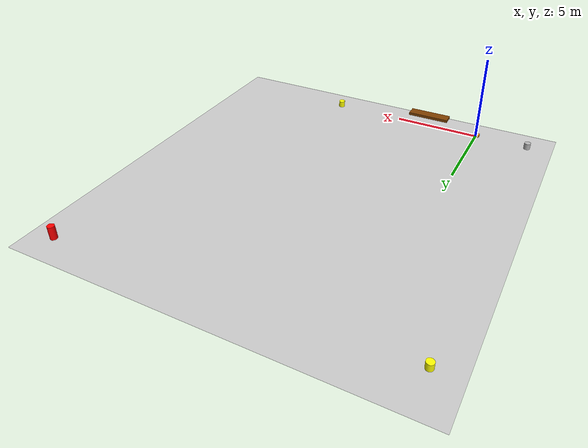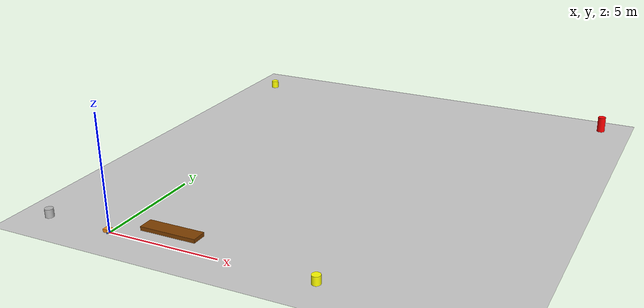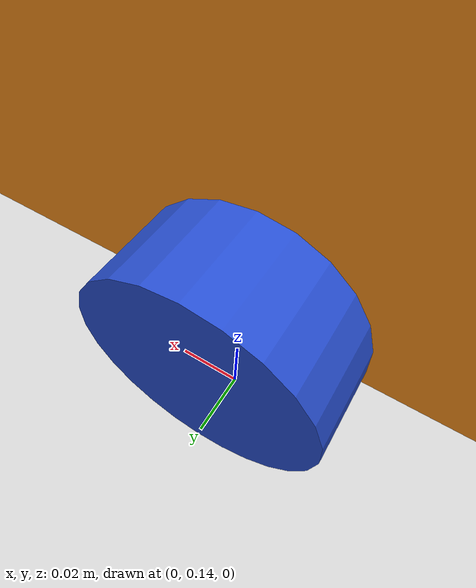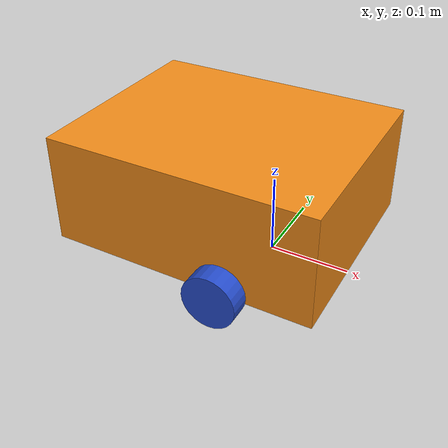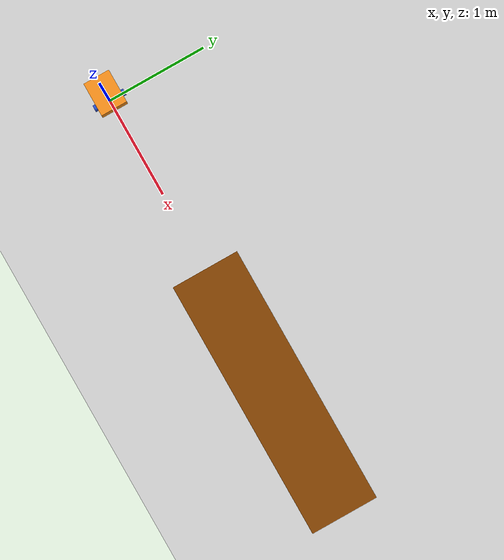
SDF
<sdf version="1.10">
 <world name="simple">
  <physics name="1ms" type="ode">
   <max_step_size>0.001</max_step_size>
   <real_time_factor>1</real_time_factor>
   <real_time_update_rate>1000</real_time_update_rate>
  </physics>
  <plugin name="gz::sim::systems::Physics" filename="gz-sim-physics-system"/>
  <plugin name="gz::sim::systems::UserCommands" filename="gz-sim-user-commands-system"/>
  <plugin name="gz::sim::systems::SceneBroadcaster" filename="gz-sim-scene-broadcaster-system"/>
  <plugin name="gz::sim::systems::Sensors" filename="gz-sim-sensors-system">
   <render_engine>ogre2</render_engine>
  </plugin>
  <plugin name="gz::sim::systems::Contact" filename="gz-sim-contact-system"/>
  <gravity>0 0 -9.8000000000000007</gravity>
  <magnetic_field>5.5644999999999998e-06 2.2875799999999999e-05 -4.2388400000000002e-05</magnetic_field>
  <atmosphere type="adiabatic"/>
  <scene>
   <ambient>0.400000006 0.400000006 0.400000006 1</ambient>
   <background>0.699999988 0.699999988 0.699999988 1</background>
   <shadows>true</shadows>
  </scene>
  <model name="ground">
   <static>true</static>
   <link name="ground_link">
    <collision name="collision1">
     <geometry><plane><normal>0 0 1</normal><size>100000 100000</size></plane></geometry>
    </collision>
    <visual name="visual1">
     <geometry><plane><normal>0 0 1</normal><size>500000 500000</size></plane></geometry>
    </visual>
    <inertial>
     <mass>1</mass>
     <inertia><ixx>1</ixx><ixy>0</ixy><ixz>0</ixz><iyy>1</iyy><iyz>0</iyz><izz>1</izz></inertia>
    </inertial>
   </link>
  </model>
  <model name="yellow_cylinder1">
   <pose>3.0084965698181372 -7.2693544571142894e-09 -0.092406731749045498 -1.1327528993487523e-07 -9.0327457712838975e-07 -5.3326172597267607e-08</pose>
   <link name="body">
    <collision name="collision1">
     <geometry><cylinder><radius>0.5</radius><length>1</length></cylinder></geometry>
    </collision>
    <visual name="visual1">
     <geometry>
      <mesh>
       <uri>file:///home/houndsito/vt-cro/robogamescode/car_ws/src/mini_car_bot/worlds/meshes/yellow1.stl</uri>
      </mesh>
     </geometry>
     <material><ambient>1 1 0 1</ambient><diffuse>1 1 0 1</diffuse></material>
    </visual>
    <inertial>
     <mass>1</mass>
     <inertia><ixx>1</ixx><ixy>0</ixy><ixz>0</ixz><iyy>1</iyy><iyz>0</iyz><izz>1</izz></inertia>
    </inertial>
   </link>
   <static>false</static>
  </model>
  <model name="yellow_cylinder3">
   <pose>2.993324990636272 1.2385129306177e-07 -0.092405082521167969 8.3954716327708989e-08 3.4007507285904365e-08 -2.5436487316019818e-07</pose>
   <link name="body">
    <collision name="collision1">
     <geometry><cylinder><radius>0.5</radius><length>1</length></cylinder></geometry>
    </collision>
    <visual name="visual1">
     <geometry>
      <mesh>
       <uri>file:///home/houndsito/vt-cro/robogamescode/car_ws/src/mini_car_bot/worlds/meshes/yellow3.stl</uri>
      </mesh>
     </geometry>
     <material><ambient>1 1 0 1</ambient><diffuse>1 1 0 1</diffuse></material>
    </visual>
    <inertial>
     <mass>1</mass>
     <inertia><ixx>1</ixx><ixy>0</ixy><ixz>0</ixz><iyy>1</iyy><iyz>0</iyz><izz>1</izz></inertia>
    </inertial>
   </link>
   <static>false</static>
  </model>
  <model name="red_cylinder1">
   <pose>10 10 -0.092403120322454388 4.0432849814122287e-18 -9.9197792903071868e-18 -3.6050613145368386e-24</pose>
   <link name="body">
    <collision name="collision1">
     <geometry><cylinder><radius>0.5</radius><length>1</length></cylinder></geometry>
    </collision>
    <visual name="visual1">
     <geometry>
      <mesh>
       <uri>file:///home/houndsito/vt-cro/robogamescode/car_ws/src/mini_car_bot/worlds/meshes/red1.stl</uri>
      </mesh>
     </geometry>
     <material><ambient>1 0 0 1</ambient><diffuse>1 0 0 1</diffuse></material>
    </visual>
    <inertial>
     <mass>1</mass>
     <inertia><ixx>1</ixx><ixy>0</ixy><ixz>0</ixz><iyy>1</iyy><iyz>0</iyz><izz>1</izz></inertia>
    </inertial>
   </link>
   <static>false</static>
  </model>
  <model name="wood">
   <pose>3.031290679944934 -8.4374482962077994e-08 -0.092401698691102194 4.5114071955902983e-09 3.3390803582690896e-08 1.4356190957757783e-07</pose>
   <link name="body">
    <collision name="collision1"><geometry><box><size>1 1 1</size></box></geometry></collision>
    <visual name="visual1">
     <geometry>
      <mesh>
       <uri>file:///home/houndsito/vt-cro/robogamescode/car_ws/src/mini_car_bot/worlds/meshes/wood.stl</uri>
       <scale>1 1 1</scale>
      </mesh>
     </geometry>
     <material><ambient>0.5 0.25 0 1</ambient><diffuse>0.5 0.25 0 1</diffuse></material>
    </visual>
    <inertial>
     <mass>1</mass>
     <inertia><ixx>1</ixx><ixy>0</ixy><ixz>0</ixz><iyy>1</iyy><iyz>0</iyz><izz>1</izz></inertia>
    </inertial>
   </link>
   <static>false</static>
  </model>
  <model name="mini_car_robot">
   <link name="base_link">
    <inertial>
     <pose>-0.060313725490196091 0 0.057392156862745097 0 0 0</pose>
     <mass>0.51000000000000001</mass>
     <inertia>
      <ixx>0.0037858632352941171</ixx>
      <ixy>0</ixy>
      <ixz>-7.4362745098039166e-05</ixz>
      <iyy>0.0056197480392156914</iyy>
      <iyz>0</iyz>
      <izz>0.0076863681372549061</izz>
     </inertia>
    </inertial>
    <collision name="base_link_fixed_joint_lump__chassis_collision">
     <pose>-0.058500000000000003 0 0.058999999999999997 0 0 0</pose>
     <geometry><box><size>0.33500000000000002 0.26500000000000001 0.13800000000000001</size></box></geometry>
    </collision>
    <collision name="base_link_fixed_joint_lump__caster_wheel_collision_1">
     <pose>-0.151 0 -0.023 0 0 0</pose>
     <geometry><sphere><radius>0.01</radius></sphere></geometry>
     <surface><friction><ode><mu>0.001</mu><mu2>0.001</mu2></ode></friction></surface>
    </collision>
    <visual name="base_link_fixed_joint_lump__chassis_visual">
     <pose>-0.058500000000000003 0 0.058999999999999997 0 0 0</pose>
     <geometry><box><size>0.33500000000000002 0.26500000000000001 0.13800000000000001</size></box></geometry>
     <material>
      <script><name>Gazebo/Orange</name><uri>file://media/materials/scripts/gazebo.material</uri></script>
      <diffuse>1 0.37500003 0.125 1</diffuse>
      <ambient>1 0.37500003 0.125 1</ambient>
     </material>
    </visual>
    <visual name="base_link_fixed_joint_lump__camera_link_visual_1">
     <pose>0.078999999999999987 0 0.070000000000000007 0 0 0</pose>
     <geometry><box><size>0.01 0.029999999999999999 0.029999999999999999</size></box></geometry>
     <material>
      <script><name>Gazebo/Red</name><uri>file://media/materials/scripts/gazebo.material</uri></script>
      <diffuse>0.25 0.25 1 1</diffuse>
      <ambient>0.25 0.25 1 1</ambient>
     </material>
    </visual>
    <visual name="base_link_fixed_joint_lump__camera_link_visual_2">
     <pose>0.078999999999999987 0 0.02 0 0 0</pose>
     <geometry><cylinder><length>0.10000000000000001</length><radius>0.002</radius></cylinder></geometry>
     <material>
      <script><name>Gazebo/Red</name><uri>file://media/materials/scripts/gazebo.material</uri></script>
      <diffuse>0 0 0 1</diffuse>
      <ambient>0 0 0 1</ambient>
     </material>
    </visual>
    <visual name="base_link_fixed_joint_lump__caster_wheel_visual_3">
     <pose>-0.151 0 -0.023 0 0 0</pose>
     <geometry><sphere><radius>0.01</radius></sphere></geometry>
     <material>
      <script><name>Gazebo/White</name><uri>file://media/materials/scripts/gazebo.material</uri></script>
      <diffuse>1 1 1 1</diffuse>
      <ambient>1 1 1 1</ambient>
     </material>
    </visual>
    <sensor name="camera" type="depth_camera">
     <pose>0.079000000000000001 0 0.070000000000000007 0 0 0</pose>
     <topic>camera/image_raw</topic>
     <update_rate>10</update_rate>
     <enable_metrics>false</enable_metrics>
     <camera name="__default__">
      <horizontal_fov>1.089</horizontal_fov>
      <image><width>640</width><height>480</height><format>BGR_INT8</format><anti_aliasing>4</anti_aliasing></image>
      <camera_info_topic>camera/camera_info</camera_info_topic>
      <triggered>false</triggered>
      <clip><near>0.050000000000000003</near><far>8</far></clip>
      <save enabled="false"><path>__default__</path></save>
      <visibility_mask>4294967295</visibility_mask>
      <noise><type>none</type><mean>0</mean><stddev>0</stddev></noise>
      <distortion><k1>0</k1><k2>0</k2><k3>0</k3><p1>0</p1><p2>0</p2><center>0.5 0.5</center></distortion>
      <lens>
       <type>stereographic</type>
       <scale_to_hfov>true</scale_to_hfov>
       <cutoff_angle>1.5707963267948966</cutoff_angle>
       <env_texture_size>256</env_texture_size>
      </lens>
     </camera>
    </sensor>
   </link>
   <joint name="left_wheel_joint" type="revolute">
    <pose>0 -1.3877787807814457e-17 0 0 0 0</pose>
    <parent>base_link</parent>
    <child>left_wheel</child>
    <axis>
     <xyz>0 0 1</xyz>
     <limit>
      <lower>-inf</lower>
      <upper>inf</upper>
      <effort>inf</effort>
      <velocity>inf</velocity>
      <stiffness>100000000</stiffness>
      <dissipation>1</dissipation>
     </limit>
     <dynamics>
      <spring_reference>0</spring_reference>
      <spring_stiffness>0</spring_stiffness>
      <damping>0</damping>
      <friction>0</friction>
     </dynamics>
    </axis>
   </joint>
   <link name="left_wheel">
    <pose>-2.3264454728053903e-25 0.14849999999999997 -6.9388939039072284e-18 -1.5707963267948961 9.1176866276373964e-19 -2.6646685393685674e-24</pose>
    <inertial>
     <mass>0.050000000000000003</mass>
     <inertia>
      <ixx>1.6429166666666668e-05</ixx>
      <ixy>0</ixy>
      <ixz>0</ixz>
      <iyy>1.6429166666666668e-05</iyy>
      <iyz>0</iyz>
      <izz>2.7225000000000001e-05</izz>
     </inertia>
    </inertial>
    <collision name="left_wheel_collision">
     <geometry><sphere><radius>0.033000000000000002</radius></sphere></geometry>
    </collision>
    <visual name="left_wheel_visual">
     <geometry>
      <cylinder><length>0.025999999999999999</length><radius>0.033000000000000002</radius></cylinder>
     </geometry>
     <material>
      <script><name>Gazebo/Blue</name><uri>file://media/materials/scripts/gazebo.material</uri></script>
      <diffuse>0.25 0.25 1 1</diffuse>
      <ambient>0.25 0.25 1 1</ambient>
     </material>
    </visual>
   </link>
   <joint name="right_wheel_joint" type="revolute">
    <pose>0 1.3877787807814457e-17 0 0 0 0</pose>
    <parent>base_link</parent>
    <child>right_wheel</child>
    <axis>
     <xyz>0 0 -1</xyz>
     <limit>
      <lower>-inf</lower>
      <upper>inf</upper>
      <effort>inf</effort>
      <velocity>inf</velocity>
      <stiffness>100000000</stiffness>
      <dissipation>1</dissipation>
     </limit>
     <dynamics>
      <spring_reference>0</spring_reference>
      <spring_stiffness>0</spring_stiffness>
      <damping>0</damping>
      <friction>0</friction>
     </dynamics>
    </axis>
   </joint>
   <link name="right_wheel">
    <pose>-2.5849394142282115e-26 -0.14849999999999997 -6.9388939039072284e-18 1.5707963267948961 1.9696676562047053e-18 4.3541917043586836e-24</pose>
    <inertial>
     <mass>0.050000000000000003</mass>
     <inertia>
      <ixx>1.6429166666666668e-05</ixx>
      <ixy>0</ixy>
      <ixz>0</ixz>
      <iyy>1.6429166666666668e-05</iyy>
      <iyz>0</iyz>
      <izz>2.7225000000000001e-05</izz>
     </inertia>
    </inertial>
    <collision name="right_wheel_collision">
     <geometry><sphere><radius>0.033000000000000002</radius></sphere></geometry>
    </collision>
    <visual name="right_wheel_visual">
     <geometry>
      <cylinder><length>0.025999999999999999</length><radius>0.033000000000000002</radius></cylinder>
     </geometry>
     <material>
      <script><name>Gazebo/Blue</name><uri>file://media/materials/scripts/gazebo.material</uri></script>
      <diffuse>0.25 0.25 1 1</diffuse>
      <ambient>0.25 0.25 1 1</ambient>
     </material>
    </visual>
   </link>
   <plugin name="gz_ros2_control::GazeboSimROS2ControlPlugin" filename="libgz_ros2_control-system.so">
    <parameters>/home/houndsito/vt-cro/robogamescode/car_ws/install/mini_car_bot/share/mini_car_bot/config/my_controllers.yaml</parameters>
    <parameters>/home/houndsito/vt-cro/robogamescode/car_ws/install/mini_car_bot/share/mini_car_bot/config/gaz_ros2_ctl_use_sim.yaml</parameters>
   </plugin>
   <frame name="base_footprint_joint" attached_to="base_link"/>
   <frame name="base_footprint" attached_to="base_footprint_joint"/>
   <frame name="camera_optical_joint" attached_to="camera_link">
    <pose>0 0 0 -1.5707963267948959 -5.5511151231257827e-17 -1.5707963267948959</pose>
   </frame>
   <frame name="camera_link_optical" attached_to="camera_optical_joint"/>
   <frame name="camera_joint" attached_to="chassis">
    <pose>0.30499999999999999 0 0.080000000000000002 0 0 0</pose>
   </frame>
   <frame name="camera_link" attached_to="camera_joint"/>
   <frame name="caster_wheel_joint" attached_to="chassis">
    <pose>0.074999999999999997 0 -0.012999999999999999 0 0 0</pose>
   </frame>
   <frame name="caster_wheel" attached_to="caster_wheel_joint"/>
   <frame name="chassis_joint" attached_to="base_link"><pose>-0.22600000000000001 0 -0.01 0 0 0</pose></frame>
   <frame name="chassis" attached_to="chassis_joint"/>
   <pose>9.3455288553524477e-10 1.7056074903905721e-19 0.032999601431457526 1.4362658585675225e-18 3.0625295528157755e-08 -1.5289616491174856e-19</pose>
   <static>false</static>
  </model>
  <model name="yellow">
   <link name="link">
    <visual name="visual">
     <geometry>
      <mesh><uri>file:///home/houndsito/vt-cro/robogamescode/world/meshes/yellow.obj</uri></mesh>
     </geometry>
    </visual>
    <collision name="collision">
     <geometry>
      <mesh><uri>file:///home/houndsito/vt-cro/robogamescode/world/meshes/yellow.obj</uri></mesh>
     </geometry>
    </collision>
    <inertial>
     <mass>1</mass>
     <inertia><ixx>1</ixx><ixy>0</ixy><ixz>0</ixz><iyy>1</iyy><iyz>0</iyz><izz>1</izz></inertia>
    </inertial>
   </link>
   <pose>-3.110037907456932 0.059276597347301639 0.00037214375158361199 -1.7615730180040091e-07 -1.0782277854557131e-07 -5.8066388723660453e-10</pose>
   <static>false</static>
  </model>
  <light name="sun" type="directional">
   <pose>10 0 10 0 0 0</pose>
   <intensity>1</intensity>
   <direction>-0.5 0.10000000000000001 -0.90000000000000002</direction>
   <diffuse>0.800000012 0.800000012 0.800000012 1</diffuse>
   <specular>0.200000003 0.200000003 0.200000003 1</specular>
   <attenuation>
    <range>1000</range>
    <linear>0.01</linear>
    <constant>0.90000000000000002</constant>
    <quadratic>0.001</quadratic>
   </attenuation>
   <spot><inner_angle>0</inner_angle><outer_angle>0</outer_angle><falloff>0</falloff></spot>
  </light>
 </world>
</sdf>
